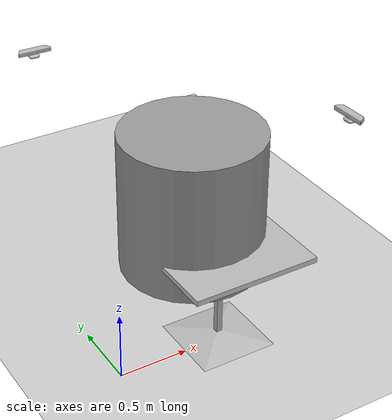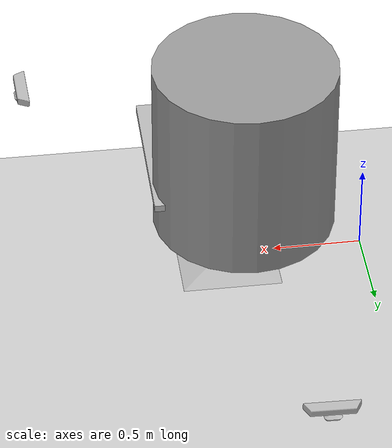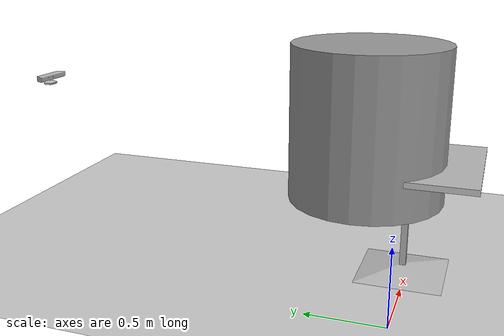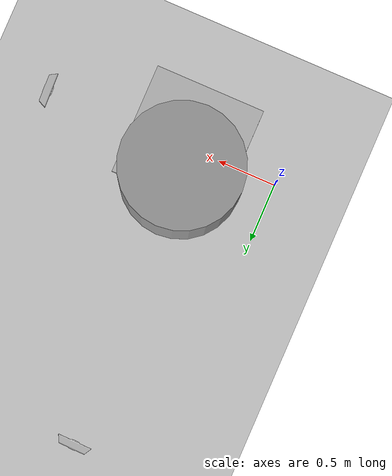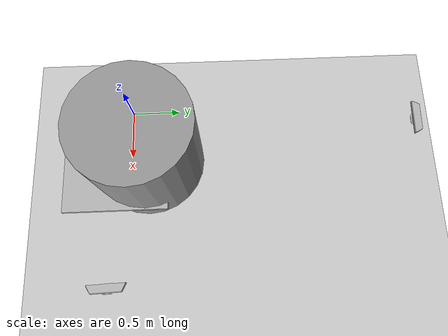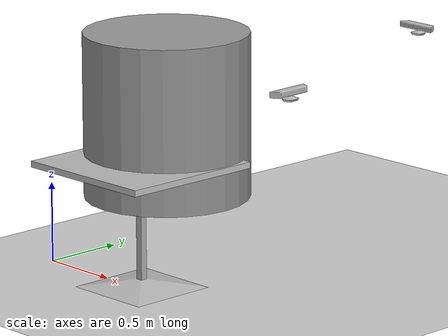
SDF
<sdf version="1.6">
 <world name="default">
  <light name="sun" type="directional">
   <pose>0 0 10 0 -0 0</pose>
   <diffuse>0.8 0.8 0.8 1</diffuse>
   <specular>0.1 0.1 0.1 1</specular>
   <attenuation>
    <range>1000</range>
    <constant>0.9</constant>
    <linear>0.01</linear>
    <quadratic>0.001</quadratic>
   </attenuation>
   <direction>-0.5 0.5 -1</direction>
  </light>
  <model name="ground_plane">
   <static>1</static>
   <link name="link">
    <collision name="collision">
     <geometry><plane><normal>0 0 1</normal><size>100 100</size></plane></geometry>
     <surface><friction><ode><mu>100</mu><mu2>50</mu2></ode></friction></surface>
    </collision>
    <visual name="visual">
     <cast_shadows>0</cast_shadows>
     <geometry><plane><normal>0 0 1</normal><size>100 100</size></plane></geometry>
     <material>
      <script><uri>file://media/materials/scripts/gazebo.material</uri><name>Gazebo/Grey</name></script>
     </material>
    </visual>
   </link>
  </model>
  <gravity>0 0 -9.8</gravity>
  <magnetic_field>6e-06 2.3e-05 -4.2e-05</magnetic_field>
  <atmosphere type="adiabatic"/>
  <physics name="default_physics" default="0" type="ode">
   <max_step_size>0.001</max_step_size>
   <real_time_factor>1</real_time_factor>
   <real_time_update_rate>1000</real_time_update_rate>
  </physics>
  <scene><ambient>0.4 0.4 0.4 1</ambient><background>0.7 0.7 0.7 1</background><shadows>1</shadows></scene>
  <spherical_coordinates>
   <surface_model>EARTH_WGS84</surface_model>
   <latitude_deg>0</latitude_deg>
   <longitude_deg>0</longitude_deg>
   <elevation>0</elevation>
   <heading_deg>0</heading_deg>
  </spherical_coordinates>
  <model name="cafe_table">
   <static>1</static>
   <link name="link">
    <collision name="surface">
     <pose>0 0 0.755 0 -0 0</pose>
     <geometry><box><size>0.913 0.913 0.04</size></box></geometry>
    </collision>
    <collision name="column">
     <pose>0 0 0.37 0 -0 0</pose>
     <geometry><box><size>0.042 0.042 0.74</size></box></geometry>
    </collision>
    <collision name="base">
     <pose>0 0 0.02 0 -0 0</pose>
     <geometry><box><size>0.56 0.56 0.04</size></box></geometry>
    </collision>
    <visual name="visual">
     <geometry><mesh><uri>model://cafe_table/meshes/cafe_table.dae</uri><scale>1 1 1</scale></mesh></geometry>
    </visual>
   </link>
   <pose>0.77666 0.029518 0 0 -0 0</pose>
  </model>
  <model name="kinect_0">
   <pose>0.638823 2.54047 1.17653 0 0 -1.59754</pose>
   <link name="link">
    <inertial><mass>0.1</mass></inertial>
    <collision name="collision"><geometry><box><size>0.073 0.276 0.072</size></box></geometry></collision>
    <visual name="visual">
     <geometry><mesh><uri>model://kinect/meshes/kinect.dae</uri><scale>1 1 1</scale></mesh></geometry>
    </visual>
    <sensor name="camera" type="depth">
     <update_rate>20</update_rate>
     <camera name="__default__">
      <horizontal_fov>1.0472</horizontal_fov>
      <image><width>640</width><height>480</height><format>R8G8B8</format></image>
      <clip><near>0.05</near><far>3</far></clip>
     </camera>
     <plugin name="camera_plugin" filename="libgazebo_ros_openni_kinect.so">
      <baseline>0.2</baseline>
      <alwaysOn>true</alwaysOn>
      <updateRate>0.0</updateRate>
      <cameraName>camera_ir1</cameraName>
      <imageTopicName>/camera1/depth/image_raw</imageTopicName>
      <cameraInfoTopicName>/camera1/depth/camera_info</cameraInfoTopicName>
      <depthImageTopicName>/camera1/depth/image_raw</depthImageTopicName>
      <depthImageInfoTopicName>/camera1/depth/camera_info</depthImageInfoTopicName>
      <pointCloudTopicName>/camera1/depth/points</pointCloudTopicName>
      <frameName>camera_link</frameName>
      <pointCloudCutoff>0.05</pointCloudCutoff>
      <distortionK1>0</distortionK1>
      <distortionK2>0</distortionK2>
      <distortionK3>0</distortionK3>
      <distortionT1>0</distortionT1>
      <distortionT2>0</distortionT2>
      <CxPrime>0</CxPrime>
      <Cx>0</Cx>
      <Cy>0</Cy>
      <focalLength>0</focalLength>
      <hackBaseline>0</hackBaseline>
     </plugin>
    </sensor>
   </link>
   <static>1</static>
  </model>
  <model name="kinect2">
   <pose>1.8687 0.151771 1.37296 0.001009 0.029772 -3.10771</pose>
   <link name="link">
    <inertial><mass>0.1</mass></inertial>
    <collision name="collision"><geometry><box><size>0.073 0.276 0.072</size></box></geometry></collision>
    <visual name="visual">
     <geometry><mesh><uri>model://kinect/meshes/kinect.dae</uri><scale>1 1 1</scale></mesh></geometry>
    </visual>
    <sensor name="camera" type="depth">
     <update_rate>20</update_rate>
     <camera name="__default__">
      <horizontal_fov>1.0472</horizontal_fov>
      <image><width>640</width><height>480</height><format>R8G8B8</format></image>
      <clip><near>0.05</near><far>3</far></clip>
     </camera>
     <plugin name="camera_plugin" filename="libgazebo_ros_openni_kinect.so">
      <baseline>0.2</baseline>
      <alwaysOn>true</alwaysOn>
      <updateRate>0.0</updateRate>
      <cameraName>camera_ir2</cameraName>
      <imageTopicName>/camera2/depth/image_raw</imageTopicName>
      <cameraInfoTopicName>/camera2/depth/camera_info</cameraInfoTopicName>
      <depthImageTopicName>/camera2/depth/image_raw</depthImageTopicName>
      <depthImageInfoTopicName>/camera2/depth/camera_info</depthImageInfoTopicName>
      <pointCloudTopicName>/camera2/depth/points</pointCloudTopicName>
      <frameName>camera_link</frameName>
      <pointCloudCutoff>0.05</pointCloudCutoff>
      <distortionK1>0</distortionK1>
      <distortionK2>0</distortionK2>
      <distortionK3>0</distortionK3>
      <distortionT1>0</distortionT1>
      <distortionT2>0</distortionT2>
      <CxPrime>0</CxPrime>
      <Cx>0</Cx>
      <Cy>0</Cy>
      <focalLength>0</focalLength>
      <hackBaseline>0</hackBaseline>
     </plugin>
    </sensor>
   </link>
   <static>1</static>
  </model>
  <model name="unit_cylinder_0_0">
   <pose>0.721686 0.291947 1.00859 -0.000116 1e-05 -0.000311</pose>
   <link name="link">
    <inertial>
     <mass>1</mass>
     <inertia><ixx>0.145833</ixx><ixy>0</ixy><ixz>0</ixz><iyy>0.145833</iyy><iyz>0</iyz><izz>0.125</izz></inertia>
    </inertial>
    <collision name="collision">
     <geometry><cylinder><radius>0.5</radius><length>1</length></cylinder></geometry>
    </collision>
    <visual name="visual">
     <geometry><cylinder><radius>0.5</radius><length>1</length></cylinder></geometry>
     <material>
      <script><name>Gazebo/Grey</name><uri>file://media/materials/scripts/gazebo.material</uri></script>
     </material>
    </visual>
   </link>
  </model>
 </world>
</sdf>
